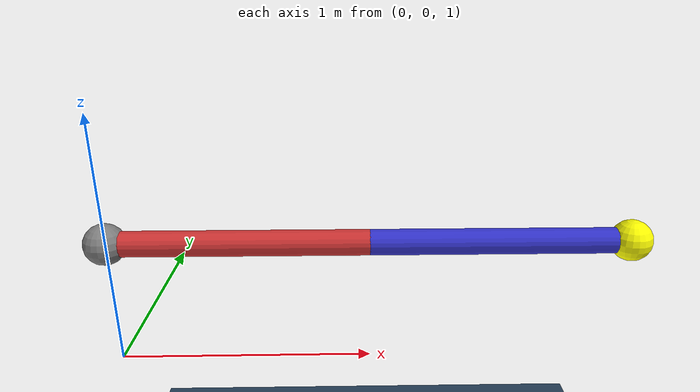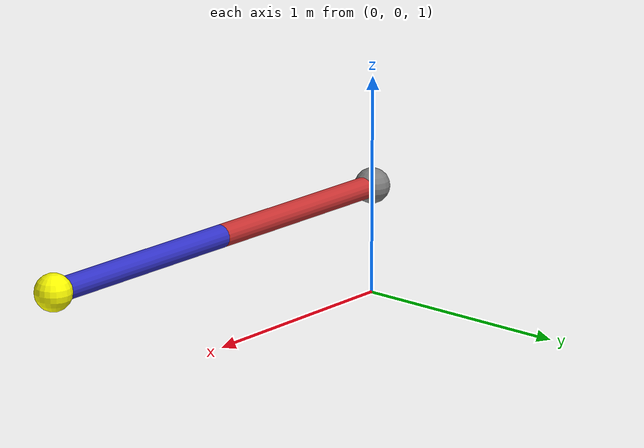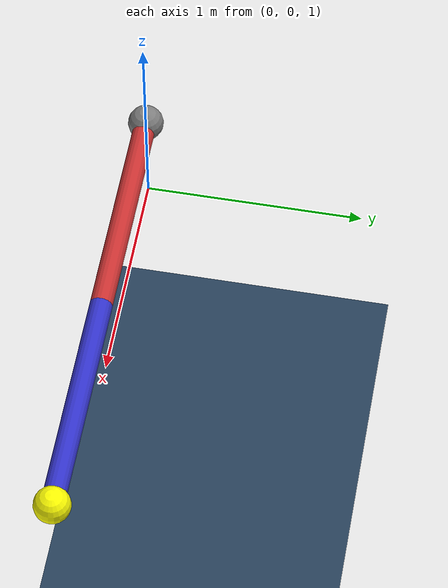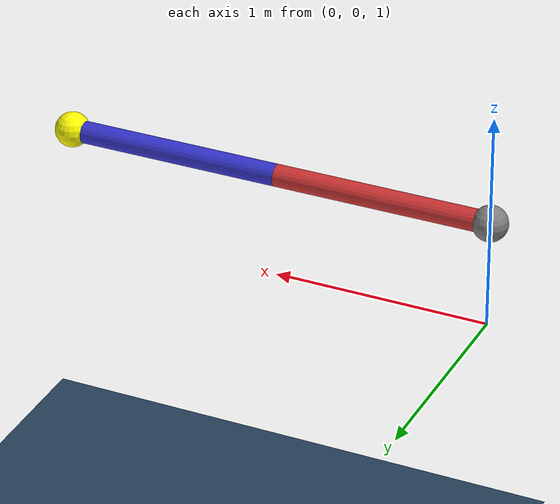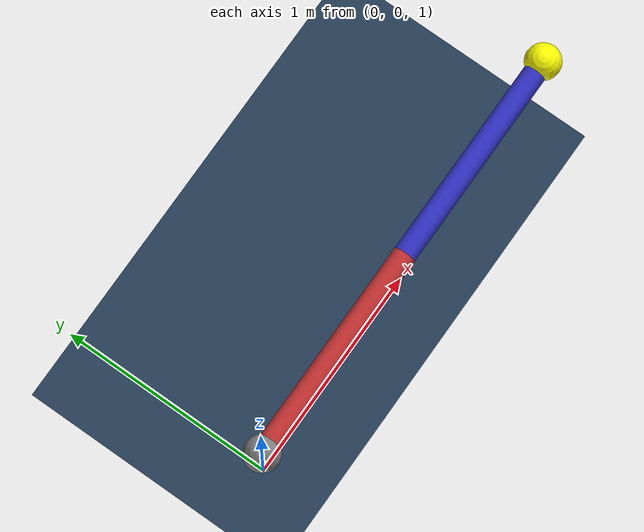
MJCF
<mujoco model="double_pendulum">
    <compiler inertiafromgeom="true"/>
    <option gravity="0 0 -9.81" integrator="RK4" timestep="0.005"/>
    <asset>
        <texture builtin="checker" height="512" name="grid" rgb1="0.1 0.2 0.3" rgb2="0.2 0.3 0.4" width="512"/>
        <material name="floor_mat" texrepeat="8 8" texture="grid"/>
    </asset>
    <worldbody>
        <light diffuse="0.8 0.8 0.8" directional="true" pos="0 0 3"/>
        <geom material="floor_mat" name="floor" size="5 5 0.1" type="plane"/>
        <body name="base" pos="0 0 1.5">
            <geom name="base_geom" size="0.08 0 0" type="sphere"/>
            <body name="link1" pos="0.5 0 0">
                <joint axis="0 1 0" name="joint1" pos="-0.5 0 0" type="hinge"/>
                <geom fromto="-0.5 0 0 0.5 0 0" name="link1_geom" rgba="0.8 0.2 0.2 1" size="0.05 0 0" type="capsule"/>
                <body name="link2" pos="1 0 0">
                    <joint axis="0 1 0" name="joint2" pos="-0.5 0 0" type="hinge"/>
                    <geom fromto="-0.5 0 0 0.5 0 0" name="link2_geom" rgba="0.2 0.2 0.8 1" size="0.05 0 0" type="capsule"/>
                    <geom name="tip" pos="0.5 0 0" rgba="1 1 0 1" size="0.08 0 0" type="sphere"/>
                </body>
            </body>
        </body>
    </worldbody>
    <actuator/>
    <sensor/>
    <contact/>
    <equality/>
    <tendon/>
</mujoco>
